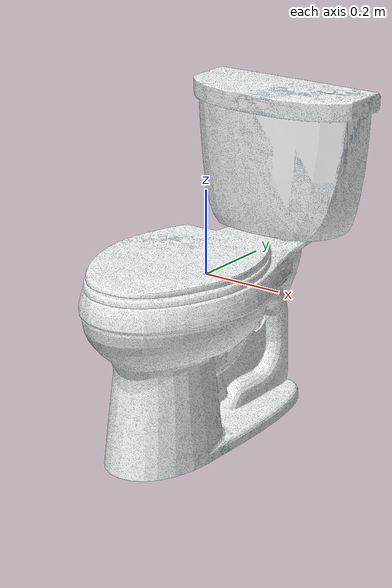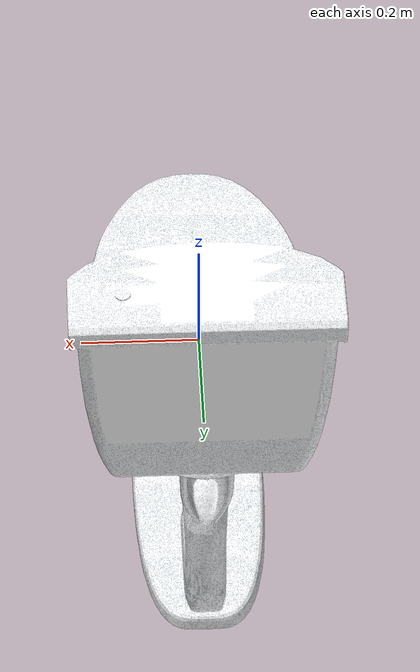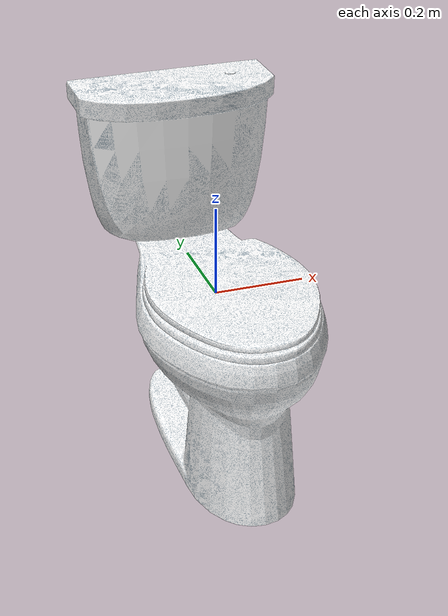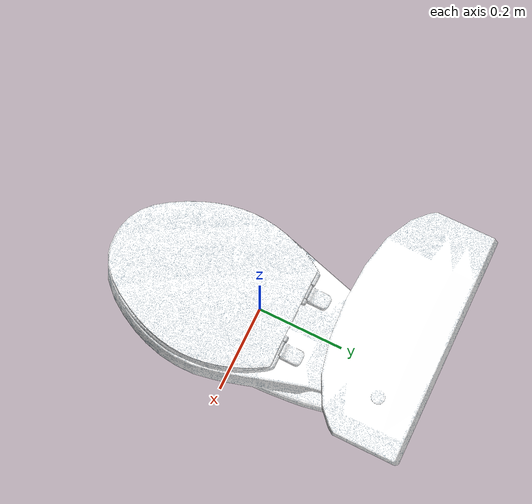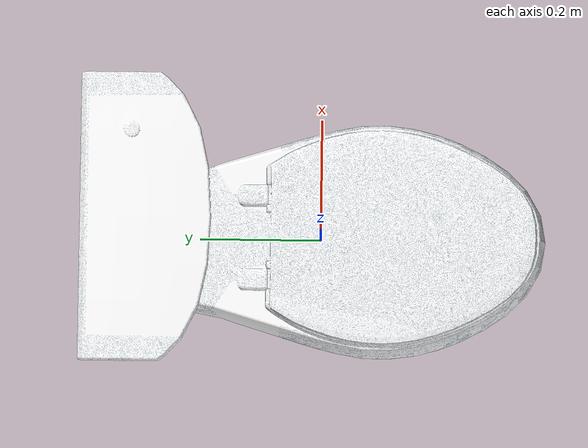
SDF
<?xml version="1.0" ?>
<sdf version="1.5">
	<model name="toilet">
		<static>1</static>
		<link name="link">
			<collision name="collision">
				<geometry>
					<mesh>
						<uri>model://toilet/meshes/model.dae</uri>
					</mesh>
				</geometry>
			</collision>
			<visual name="visual">
				<geometry>
					<mesh>
						<uri>model://toilet/meshes/model.dae</uri>
					</mesh>
				</geometry>
			</visual>
		</link>
	</model>
</sdf>
